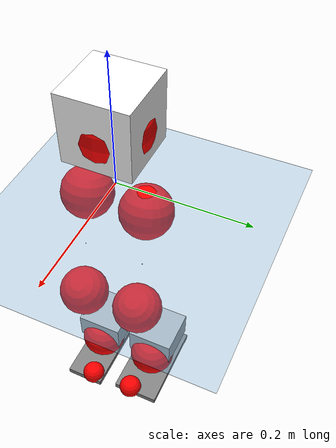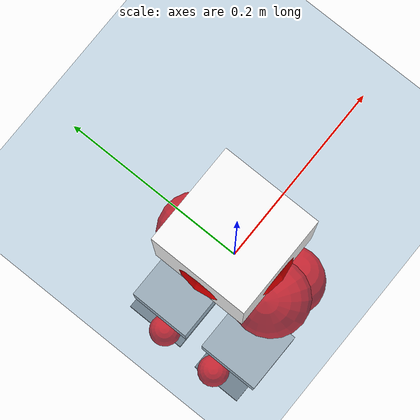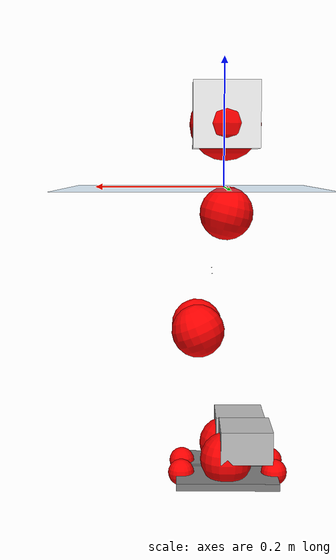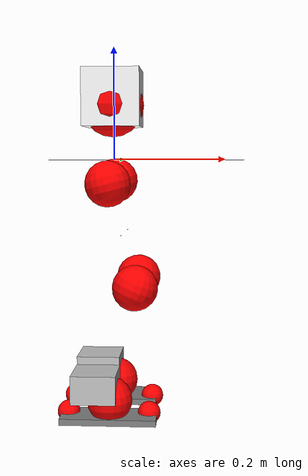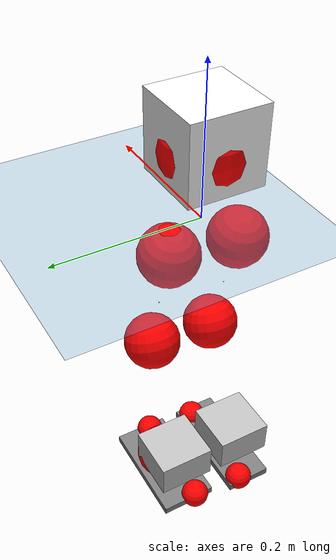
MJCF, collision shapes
<mujoco model="pi_12dof_release_v1">
  <compiler angle="radian" assetdir="assets" balanceinertia="true" inertiafromgeom="false"/>

  <option timestep="0.005" density="1.2" viscosity="2e-05"/>

  <size nkey="1"/>

  <visual>
    <quality shadowsize="8192"/>
    <map shadowclip="0.5"/>
  </visual>

  <default>
    <default class="/">
      <joint armature="0.01" damping="0.01" frictionloss="0.01"/>
      <geom contype="0" conaffinity="0" group="1" solref="-1000 -80"/>
      <site size="0.01 0.005 0.005" group="5"/>
      <general forcelimited="true" biastype="affine" gainprm="20" biasprm="0 -20 -0.5"/>
      <default class="foot">
        <geom size="0.0845 0.036 0.005" type="box" condim="6" group="4" priority="1" friction="0.9 0.2 0.2" solimp="0.015 1 0.005"/>
      </default>
      <default class="reward_collision_sphere">
        <geom group="5" rgba="1 0 0 1"/>
      </default>
    </default>
  </default>

  <asset>
    <texture type="skybox" colorspace="auto" name="//unnamed_texture_0" builtin="gradient" rgb1="0.95 0.95 0.95" rgb2="0.95 0.95 0.95" width="100" height="600"/>
    <texture type="2d" colorspace="auto" name="texplane" builtin="checker" rgb1="0.345 0.575 0.748" rgb2="0.345 0.575 0.748" markrgb="1 1 1" width="512" height="512"/>
    <material name="MatPlane" class="/" texture="texplane" texuniform="true" texrepeat="2 2" specular="0.9"/>
    <mesh name="baselink_1" class="/" file="baselink_1.STL"/>
    <mesh name="r_hip_pitch_link" class="/" file="r_hip_pitch_link.STL"/>
    <mesh name="r_hip_roll_link" class="/" file="r_hip_roll_link.STL"/>
    <mesh name="r_thigh_link" class="/" file="r_thigh_link.STL"/>
    <mesh name="r_calf_link" class="/" file="r_calf_link.STL"/>
    <mesh name="r_ankle_pitch_link" class="/" file="r_ankle_pitch_link.STL"/>
    <mesh name="r_ankle_roll_link" class="/" file="r_ankle_roll_link.STL"/>
    <mesh name="l_hip_pitch_link" class="/" file="l_hip_pitch_link.STL"/>
    <mesh name="l_hip_roll_link" class="/" file="l_hip_roll_link.STL"/>
    <mesh name="l_thigh_link" class="/" file="l_thigh_link.STL"/>
    <mesh name="l_calf_link" class="/" file="l_calf_link.STL"/>
    <mesh name="l_ankle_pitch_link" class="/" file="l_ankle_pitch_link.STL"/>
    <mesh name="l_ankle_roll_link" class="/" file="l_ankle_roll_link.STL"/>
  </asset>

  <worldbody>
    <geom name="floor" class="/" size="100 100 0.125" type="plane" group="0" material="MatPlane"/>
    <light name="toplight_shadow" class="/" pos="0 0 5" dir="0.0990148 0.0990148 -0.990148" type="directional" ambient="0.04 0.04 0.04" diffuse="0.55 0.55 0.55" specular="0.12 0.12 0.12"/>
    <light name="toplight_fill" class="/" pos="0 0 5" dir="0.0990148 0.0990148 -0.990148" type="directional" castshadow="false" ambient="0.04 0.04 0.04" diffuse="0.3 0.3 0.3" specular="0.08 0.08 0.08"/>
    <body name="trunk" pos="-0.00185899 0.000494651 0.00250914" quat="0.999999 -0.000403671 -0.000380653 -0.00127387">
      <inertial pos="0.00381177 -0.000921117 0.0512946" quat="0.695701 0.0153978 0.0048944 0.71815" mass="2.23464" diaginertia="0.0140201 0.000918977 0.0178029"/>
      <joint name="//unnamed_joint_0" type="free"/>
      <geom name="//unnamed_geom_1" class="/" type="mesh" density="0" rgba="1 1 1 1" mesh="baselink_1"/>
      <geom name="//unnamed_geom_2" class="/" size="0.0507612 0.0507612 0.0507612" pos="0 0 0.10691" type="box" rgba="1 1 1 1"/>
      <geom name="//unnamed_geom_3" class="reward_collision_sphere" size="0.0558373" pos="0 0 0.0935458"/>
      <site name="imu" class="/" pos="0.0010677 0.00125123 -0.00125187" size="0.0101522"/>
      <camera name="track" class="/" pos="0 -1.26708 0" quat="0.707107 0.707107 0 0" mode="trackcom"/>
      <camera name="ego_camera" class="/" pos="0.0806821 0 0.240546" quat="-0.5 -0.5 0.5 0.5"/>
      <body name="r_hip_pitch_link" pos="-0.00131201 -0.0161456 -0.0466082" quat="0.992196 8.19708e-05 -0.124687 -0.000146227">
        <inertial pos="0.0014404 -0.0374993 2.14465e-05" quat="-0.0191331 0.705686 -0.0282051 0.707705" mass="0.406678" diaginertia="0.000157682 9.96944e-06 0.000361188"/>
        <joint name="r_hip_pitch_joint" class="/" pos="0 0 0" axis="0.00623801 -0.999977 -0.00268572" stiffness="0.00494603" range="-1.7589 1.2545" armature="0.00964428" damping="0.013858" frictionloss="0.00876041"/>
        <geom name="//unnamed_geom_4" class="/" type="mesh" density="0" rgba="0.75294 0.75294 0.75294 1" mesh="r_hip_pitch_link"/>
        <geom name="//unnamed_geom_5" class="/" size="0.000507612 0.000507612 0.000507612" type="box" rgba="0.75294 0.75294 0.75294 1"/>
        <body name="r_hip_roll_link" pos="-0.00247335 -0.0360654 0.00241925" quat="1 -0.000182758 0.000179949 -0.000190879">
          <inertial pos="-0.00220716 -4.13046e-06 -0.0792596" quat="0.702077 -0.0727244 -0.0828661 0.703514" mass="0.398066" diaginertia="0.000484266 2.8835e-05 0.000566633"/>
          <joint name="r_hip_roll_joint" class="/" pos="0 0 0" axis="-0.999944 0.00979847 0.00393014" range="-0.11966 0.491084" armature="0.00889781" damping="0.0121984" frictionloss="0.0101081"/>
          <geom name="//unnamed_geom_6" class="/" type="mesh" density="0" rgba="0.75294 0.75294 0.75294 1" mesh="r_hip_roll_link"/>
          <geom name="//unnamed_geom_7" class="/" size="0.000507612 0.000507612 0.000507612" type="box" rgba="0.75294 0.75294 0.75294 1"/>
          <geom name="//unnamed_geom_8" class="reward_collision_sphere" size="0.0406089"/>
          <body name="r_thigh_link" pos="-8.41187e-05 0.000783372 -0.0932011" quat="1 -0.000311155 -0.000763326 3.54382e-05">
            <inertial pos="-0.000897416 0.0026549 -0.0664116" quat="0.735445 0.677581 -7.85188e-05 -0.00235705" mass="0.116794" diaginertia="0.000175171 9.51065e-06 0.000248208"/>
            <joint name="r_thigh_joint" class="/" pos="0 0 0" axis="-0.000331138 7.98081e-05 -1" stiffness="0.00875952" range="-0.344184 0.56208" armature="0.0101921" damping="0" frictionloss="0.0115663"/>
            <geom name="//unnamed_geom_9" class="/" type="mesh" density="0" rgba="0.75294 0.75294 0.75294 1" mesh="r_thigh_link"/>
            <geom name="//unnamed_geom_10" class="/" size="0.000507612 0.000507612 0.000507612" type="box" rgba="0.75294 0.75294 0.75294 1"/>
            <body name="r_calf_link" pos="0.000439121 0.00198686 -0.0958617" quat="0.947649 2.46383e-05 0.319314 -7.17769e-05">
              <inertial pos="-0.0029341 0.000617522 -0.0957232" quat="0.999989 -0.000589012 0.00171031 0.00438051" mass="0.866361" diaginertia="0.00501386 0.000361759 0.000732524"/>
              <joint name="r_calf_joint" class="/" pos="0 0 0" axis="-0.00727147 -0.99995 0.0068076" stiffness="0.00200507" range="-1.64537 0.702378" armature="0.00860395" damping="0" frictionloss="0.00981242"/>
              <geom name="//unnamed_geom_11" class="/" type="mesh" density="0" rgba="0.75294 0.75294 0.75294 1" mesh="r_calf_link"/>
              <geom name="//unnamed_geom_12" class="/" size="0.000507612 0.000507612 0.000507612" type="box" rgba="0.75294 0.75294 0.75294 1"/>
              <geom name="//unnamed_geom_13" class="reward_collision_sphere" size="0.0406089"/>
              <body name="r_ankle_pitch_link" pos="0.00256804 -0.00191007 -0.188156" quat="0.980009 0.000468634 -0.198954 0.00029943">
                <inertial pos="0.00537933 0.00052899 -0.00290407" quat="0.0149783 0.70682 0.00126572 0.707234" mass="0.185529" diaginertia="0.00042372 2.19729e-05 0.000505045"/>
                <joint name="r_ankle_pitch_joint" class="/" pos="0 0 0" axis="-0.00102119 -0.999937 0.0112106" range="-1.28063 0.54884" armature="0.011437" damping="0.00226581" frictionloss="0.0103528"/>
                <geom name="//unnamed_geom_14" class="/" type="mesh" density="0" rgba="0.75294 0.75294 0.75294 1" mesh="r_ankle_pitch_link"/>
                <geom name="//unnamed_geom_15" class="/" size="0.0395937 0.0406089 0.0253806" type="box" rgba="0.75294 0.75294 0.75294 1"/>
                <body name="r_ankle_roll_link" pos="0.0787575 0.000870735 -5.63594e-05" quat="0.999999 -0.000860457 0.000654929 -0.000698247">
                  <inertial pos="-0.0274878 -4.29238e-05 -0.0191879" quat="0.55873 0.429558 0.434776 0.560599" mass="0.572738" diaginertia="0.00172194 0.000103762 0.00123709"/>
                  <joint name="r_ankle_roll_joint" class="/" pos="0 0 0" axis="-0.999895 -0.00555032 0.0134156" range="-0.103563 0.130109" armature="0.0101073" damping="0.00852551" frictionloss="0.0111254"/>
                  <geom name="//unnamed_geom_16" class="/" type="mesh" density="0" rgba="0.75294 0.75294 0.75294 1" mesh="r_ankle_roll_link"/>
                  <geom name="//unnamed_geom_17" class="/" type="mesh" rgba="0.75294 0.75294 0.75294 1" mesh="r_ankle_roll_link"/>
                  <geom name="right_foot" class="foot" size="0.0851845 0.033854 0.00555384" pos="-0.0548638 0 -0.0588002"/>
                  <geom name="//unnamed_geom_19" class="reward_collision_sphere" size="0.0406089" pos="-0.053788 0 -0.0267274"/>
                  <geom name="//unnamed_geom_20" class="reward_collision_sphere" size="0.0203045" pos="0.0161364 0.0126708 -0.0534548"/>
                  <geom name="//unnamed_geom_21" class="reward_collision_sphere" size="0.0203045" pos="-0.129091 0.0126708 -0.0534548"/>
                  <site name="right_foot" class="foot" pos="-0.0548638 0 -0.0588002" size="0.0101522"/>
                </body>
              </body>
            </body>
          </body>
        </body>
      </body>
      <body name="l_hip_pitch_link" pos="0.000138877 0.0126803 -0.0442695" quat="0.992198 1.87389e-07 -0.124675 4.83918e-06">
        <inertial pos="0.000440146 0.0363446 5.58299e-05" quat="-0.0442577 0.705551 0.0352177 0.706398" mass="0.408631" diaginertia="0.000181464 1.05266e-05 0.000414229"/>
        <joint name="l_hip_pitch_joint" class="/" pos="0 0 0" axis="0.00606754 0.999979 -0.00240951" range="-1.22697 1.74483" armature="0.00962684" damping="0.0244262" frictionloss="0.00894959"/>
        <geom name="//unnamed_geom_22" class="/" type="mesh" density="0" rgba="0.75294 0.75294 0.75294 1" mesh="l_hip_pitch_link"/>
        <geom name="//unnamed_geom_23" class="/" size="0.000507612 0.000507612 0.000507612" type="box" rgba="0.75294 0.75294 0.75294 1"/>
        <body name="l_hip_roll_link" pos="0.000496106 0.0327854 0.00308403" quat="0.999999 0.00120546 -0.000250929 -0.000531851">
          <inertial pos="-0.00102053 0.00245817 -0.0809682" quat="0.699684 -0.0763436 -0.0788491 0.705972" mass="0.381942" diaginertia="0.000471475 2.83153e-05 0.000549995"/>
          <joint name="l_hip_roll_joint" class="/" pos="0 0 0" axis="-0.999902 0.0136601 0.00291135" range="-0.451565 0.0841093" armature="0.00913929" damping="0.0156316" frictionloss="0.00878095"/>
          <geom name="//unnamed_geom_24" class="/" type="mesh" density="0" rgba="0.75294 0.75294 0.75294 1" mesh="l_hip_roll_link"/>
          <geom name="//unnamed_geom_25" class="/" size="0.000507612 0.000507612 0.000507612" type="box" rgba="0.75294 0.75294 0.75294 1"/>
          <geom name="//unnamed_geom_26" class="reward_collision_sphere" size="0.0406089"/>
          <body name="l_thigh_link" pos="-0.00196159 0.00219207 -0.0942387" quat="1 0.000242173 -0.000103047 0.000240679">
            <inertial pos="0.00296052 -0.000109111 -0.0661949" quat="0.666604 0.745399 -0.000365599 -0.00445965" mass="0.115794" diaginertia="0.000171892 9.62076e-06 0.000249645"/>
            <joint name="l_thigh_joint" class="/" pos="0 0 0" axis="0.00093033 0.00282494 -0.999996" range="-0.599956 0.245691" armature="0.0112936" damping="0.00571424" frictionloss="0.00987432"/>
            <geom name="//unnamed_geom_27" class="/" type="mesh" density="0" rgba="0.75294 0.75294 0.75294 1" mesh="l_thigh_link"/>
            <geom name="//unnamed_geom_28" class="/" size="0.000507612 0.000507612 0.000507612" type="box" rgba="0.75294 0.75294 0.75294 1"/>
            <body name="l_calf_link" pos="-0.00169706 -0.000361947 -0.0910179" quat="0.947663 -0.000155265 0.319274 -1.10047e-05">
              <inertial pos="-0.00240645 0.00436581 -0.0929038" quat="0.999985 -0.000228705 0.00537896 0.00111627" mass="0.87617" diaginertia="0.00516251 0.000359015 0.000750196"/>
              <joint name="l_calf_joint" class="/" pos="0 0 0" axis="-0.00761831 0.99997 0.00151094" stiffness="0.00830928" range="-0.6496 1.70438" armature="0.0101176" damping="0.00115972" frictionloss="0.0114732"/>
              <geom name="//unnamed_geom_29" class="/" type="mesh" density="0" rgba="0.75294 0.75294 0.75294 1" mesh="l_calf_link"/>
              <geom name="//unnamed_geom_30" class="/" size="0.000507612 0.000507612 0.000507612" type="box" rgba="0.75294 0.75294 0.75294 1"/>
              <geom name="//unnamed_geom_31" class="reward_collision_sphere" size="0.0406089"/>
              <body name="l_ankle_pitch_link" pos="-0.000872632 0.00376819 -0.187611" quat="0.980109 -0.000278803 -0.198458 -0.000506507">
                <inertial pos="0.00434595 0.00205653 0.00114577" quat="-0.00428039 0.706988 0.00098127 0.707211" mass="0.173992" diaginertia="0.000419212 2.20869e-05 0.000493679"/>
                <joint name="l_ankle_pitch_joint" class="/" pos="0 0 0" axis="-0.00243286 0.999989 0.0040814" stiffness="0.00247386" range="-0.563324 1.25428" armature="0.00901605" damping="0.0103005" frictionloss="0.0115409"/>
                <geom name="//unnamed_geom_32" class="/" type="mesh" density="0" rgba="0.75294 0.75294 0.75294 1" mesh="l_ankle_pitch_link"/>
                <geom name="//unnamed_geom_33" class="/" size="0.0395937 0.0406089 0.0253806" type="box" rgba="0.75294 0.75294 0.75294 1"/>
                <body name="l_ankle_roll_link" pos="0.0834137 0.00159904 -0.000524058" quat="1 -8.94366e-07 4.59204e-06 -5.0964e-06">
                  <inertial pos="-0.0245783 -0.00339008 -0.0178241" quat="0.556663 0.43428 0.440404 0.554591" mass="0.537061" diaginertia="0.00159014 0.000105125 0.00117229"/>
                  <joint name="l_ankle_roll_joint" class="/" pos="0 0 0" axis="-0.999997 -0.00169115 -0.00191151" stiffness="0.000270843" range="-0.130483 0.107371" armature="0.0110446" damping="0.00860514" frictionloss="0.0115657"/>
                  <geom name="//unnamed_geom_34" class="/" type="mesh" density="0" rgba="0.75294 0.75294 0.75294 1" mesh="l_ankle_roll_link"/>
                  <geom name="//unnamed_geom_35" class="/" type="mesh" rgba="0.75294 0.75294 0.75294 1" mesh="l_ankle_roll_link"/>
                  <geom name="left_foot" class="foot" size="0.0786043 0.0404294 0.0055021" pos="-0.0548638 0 -0.0588002"/>
                  <geom name="//unnamed_geom_37" class="reward_collision_sphere" size="0.0406089" pos="-0.053788 0 -0.0267274"/>
                  <geom name="//unnamed_geom_38" class="reward_collision_sphere" size="0.0203045" pos="0.0161364 -0.0126708 -0.0534548"/>
                  <geom name="//unnamed_geom_39" class="reward_collision_sphere" size="0.0203045" pos="-0.129091 -0.0126708 -0.0534548"/>
                  <site name="left_foot" class="foot" pos="-0.0548638 0 -0.0588002" size="0.0101522"/>
                </body>
              </body>
            </body>
          </body>
        </body>
      </body>
    </body>
  </worldbody>

  <contact>
    <pair class="/" geom1="floor" geom2="right_foot" name="//unnamed_contact_1"/>
    <pair class="/" geom1="floor" geom2="left_foot" name="//unnamed_contact_0"/>
  </contact>

  <actuator>
    <general name="r_hip_pitch_joint" class="/" joint="r_hip_pitch_joint" forcerange="-22.6158 22.6158" gainprm="21.05" biasprm="0 -21.05 -0.480587"/>
    <general name="r_hip_roll_joint" class="/" joint="r_hip_roll_joint" forcerange="-21.7177 21.7177" gainprm="21.05" biasprm="0 -21.05 -0.480587"/>
    <general name="r_thigh_joint" class="/" joint="r_thigh_joint" forcerange="-20.7881 20.7881" gainprm="21.05" biasprm="0 -21.05 -0.480587"/>
    <general name="r_calf_joint" class="/" joint="r_calf_joint" forcerange="-21.6204 21.6204" gainprm="21.05" biasprm="0 -21.05 -0.480587"/>
    <general name="r_ankle_pitch_joint" class="/" joint="r_ankle_pitch_joint" forcerange="-21.859 21.859" gainprm="21.05" biasprm="0 -21.05 -0.480587"/>
    <general name="r_ankle_roll_joint" class="/" joint="r_ankle_roll_joint" forcerange="-21.4404 21.4404" gainprm="21.05" biasprm="0 -21.05 -0.480587"/>
    <general name="l_hip_pitch_joint" class="/" joint="l_hip_pitch_joint" forcerange="-19.9245 19.9245" gainprm="21.05" biasprm="0 -21.05 -0.480587"/>
    <general name="l_hip_roll_joint" class="/" joint="l_hip_roll_joint" forcerange="-21.4704 21.4704" gainprm="21.05" biasprm="0 -21.05 -0.480587"/>
    <general name="l_thigh_joint" class="/" joint="l_thigh_joint" forcerange="-19.3402 19.3402" gainprm="21.05" biasprm="0 -21.05 -0.480587"/>
    <general name="l_calf_joint" class="/" joint="l_calf_joint" forcerange="-20.6162 20.6162" gainprm="21.05" biasprm="0 -21.05 -0.480587"/>
    <general name="l_ankle_pitch_joint" class="/" joint="l_ankle_pitch_joint" forcerange="-23.0509 23.0509" gainprm="21.05" biasprm="0 -21.05 -0.480587"/>
    <general name="l_ankle_roll_joint" class="/" joint="l_ankle_roll_joint" forcerange="-20.2862 20.2862" gainprm="21.05" biasprm="0 -21.05 -0.480587"/>
  </actuator>

  <sensor>
    <gyro site="imu" name="imu_angular_velocity"/>
    <velocimeter site="imu" name="imu_linear_velocity"/>
    <framelinvel objtype="site" objname="left_foot" name="left_foot_global_linear_velocity"/>
    <framelinvel objtype="site" objname="right_foot" name="right_foot_global_linear_velocity"/>
  </sensor>

  <keyframe>
    <key name="home" qpos="0 0 0.291 1 0 0 0 0.4 0 0 -0.8 0.4 0 -0.4 0 0 0.8 -0.4 0"/>
  </keyframe>
</mujoco>
